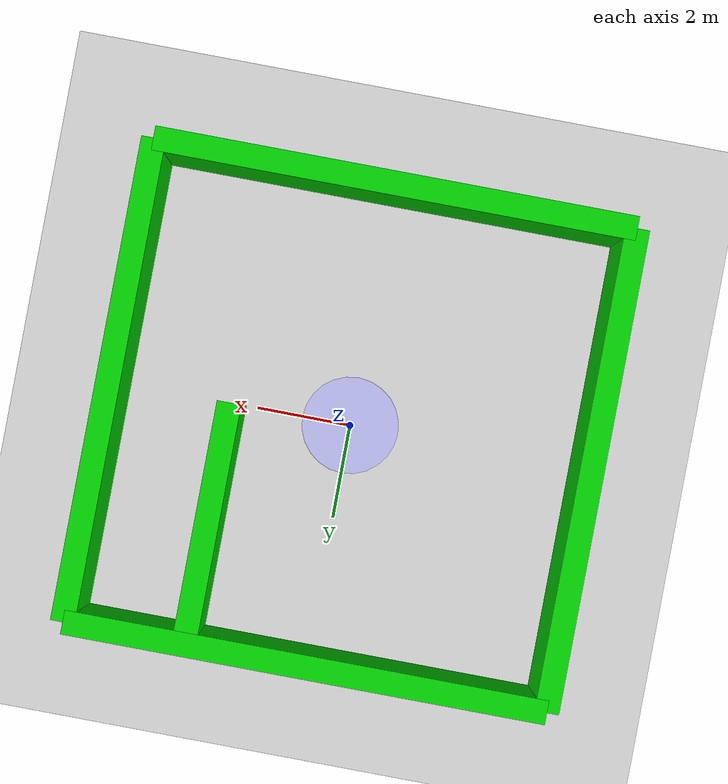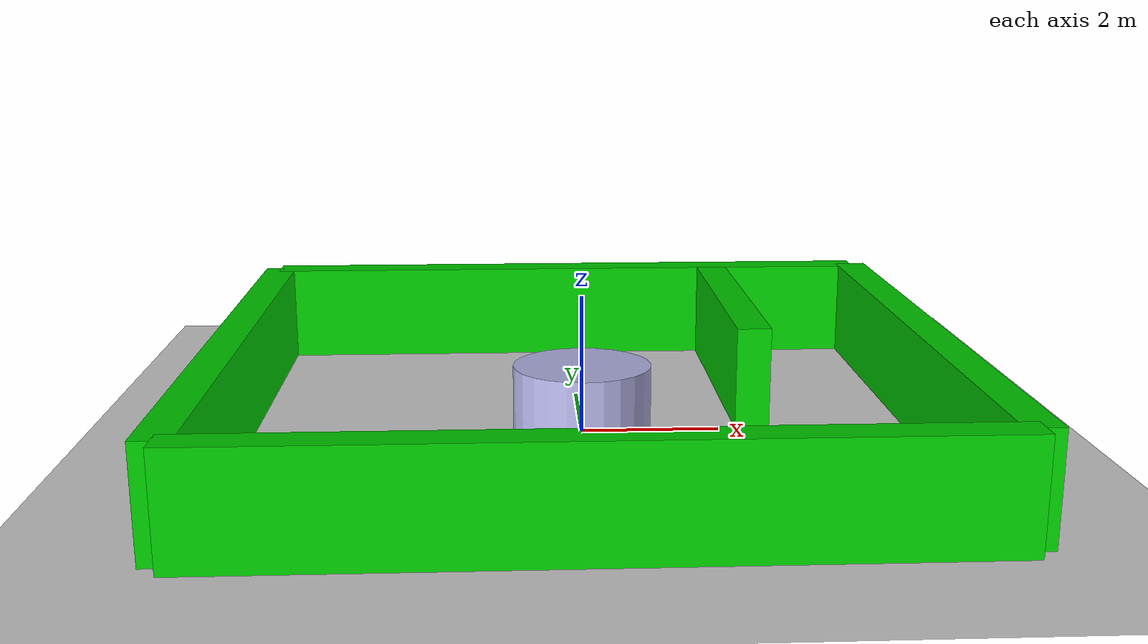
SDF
<?xml version="1.0" ?>
<sdf version="1.6">
  <world name="garden_maze">
    <include>
      <uri>model://sun</uri>
    </include>
    <include>
      <uri>model://ground_plane</uri>
    </include>

    <!-- Garden hedges forming a maze -->
    <model name="hedge1">
      <static>true</static>
      <pose>0 5 0.75 0 0 0</pose>
      <link name="link">
        <collision name="collision">
          <geometry>
            <box>
              <size>10 0.5 1.5</size>
            </box>
          </geometry>
        </collision>
        <visual name="visual">
          <geometry>
            <box>
              <size>10 0.5 1.5</size>
            </box>
          </geometry>
          <material>
            <ambient>0 0.8 0 1</ambient>
          </material>
        </visual>
      </link>
    </model>

    <model name="hedge2">
      <static>true</static>
      <pose>0 -5 0.75 0 0 0</pose>
      <link name="link">
        <collision name="collision">
          <geometry>
            <box>
              <size>10 0.5 1.5</size>
            </box>
          </geometry>
        </collision>
        <visual name="visual">
          <geometry>
            <box>
              <size>10 0.5 1.5</size>
            </box>
          </geometry>
          <material>
            <ambient>0 0.8 0 1</ambient>
          </material>
        </visual>
      </link>
    </model>

    <model name="hedge3">
      <static>true</static>
      <pose>5 0 0.75 0 0 1.57</pose>
      <link name="link">
        <collision name="collision">
          <geometry>
            <box>
              <size>10 0.5 1.5</size>
            </box>
          </geometry>
        </collision>
        <visual name="visual">
          <geometry>
            <box>
              <size>10 0.5 1.5</size>
            </box>
          </geometry>
          <material>
            <ambient>0 0.8 0 1</ambient>
          </material>
        </visual>
      </link>
    </model>

    <model name="hedge4">
      <static>true</static>
      <pose>-5 0 0.75 0 0 1.57</pose>
      <link name="link">
        <collision name="collision">
          <geometry>
            <box>
              <size>10 0.5 1.5</size>
            </box>
          </geometry>
        </collision>
        <visual name="visual">
          <geometry>
            <box>
              <size>10 0.5 1.5</size>
            </box>
          </geometry>
          <material>
            <ambient>0 0.8 0 1</ambient>
          </material>
        </visual>
      </link>
    </model>

    <!-- Internal hedge walls -->
    <model name="hedge5">
      <static>true</static>
      <pose>2.5 2.5 0.75 0 0 1.57</pose>
      <link name="link">
        <collision name="collision">
          <geometry>
            <box>
              <size>5 0.5 1.5</size>
            </box>
          </geometry>
        </collision>
        <visual name="visual">
          <geometry>
            <box>
              <size>5 0.5 1.5</size>
            </box>
          </geometry>
          <material>
            <ambient>0 0.8 0 1</ambient>
          </material>
        </visual>
      </link>
    </model>

    <!-- Garden decorations -->
    <model name="fountain">
      <static>true</static>
      <pose>0 0 0.5 0 0 0</pose>
      <link name="link">
        <collision name="collision">
          <geometry>
            <cylinder>
              <radius>1</radius>
              <length>1</length>
            </cylinder>
          </geometry>
        </collision>
        <visual name="visual">
          <geometry>
            <cylinder>
              <radius>1</radius>
              <length>1</length>
            </cylinder>
          </geometry>
          <material>
            <ambient>0.7 0.7 0.9 1</ambient>
          </material>
        </visual>
      </link>
    </model>

  </world>
</sdf>
